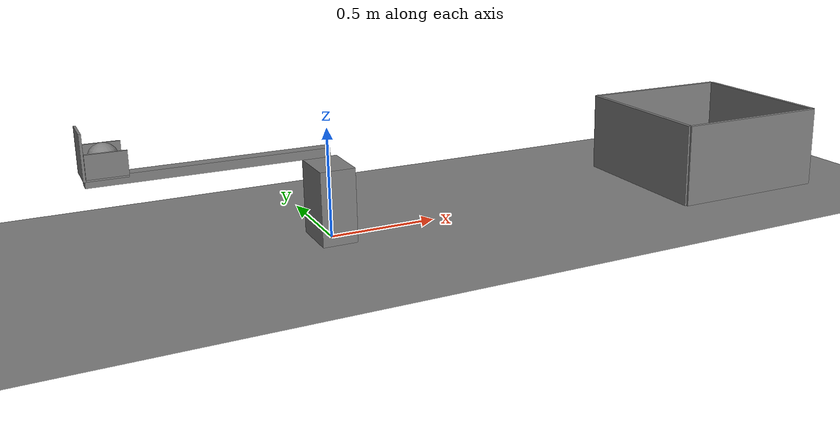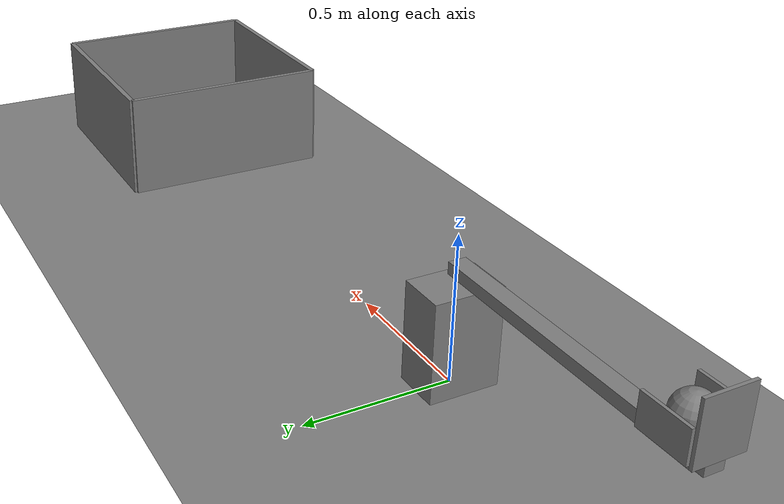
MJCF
<mujoco model="catapult_fixture">
  <compiler angle="radian"/>
  <option timestep="0.002"/>
  <worldbody>
    <geom name="floor" type="plane" size="8 8 0.1"/>
    <geom name="catapult_base" type="box" pos="0 0 0.170" size="0.08 0.12 0.170"/>
    <body name="catapult_arm" pos="0 0 0.4">
      <joint name="catapult_hinge" type="hinge" axis="0 1 0" limited="true" range="0 0.9599" stiffness="2.6" springref="2.618" damping="0.05" armature="0.01"/>
      <geom name="catapult_beam" type="box" pos="-0.500 0 0" size="0.500 0.03 0.02" mass="0.3"/>
      <geom name="catapult_cup_floor" type="box" pos="-0.920 0 0.025" size="0.08 0.08 0.005" mass="0.02"/>
      <geom name="catapult_cup_back" type="box" pos="-1.005 0 0.115" size="0.005 0.08 0.095" mass="0.01"/>
      <geom name="catapult_cup_left" type="box" pos="-0.920 0.085 0.08" size="0.08 0.005 0.05" mass="0.005"/>
      <geom name="catapult_cup_right" type="box" pos="-0.920 -0.085 0.08" size="0.08 0.005 0.05" mass="0.005"/>
    </body>
    <body name="ball" pos="-0.920 0 0.4895">
      <freejoint/>
      <geom name="ball" type="sphere" size="0.06" mass="0.15" condim="6" friction="0.8 0.01 0.004" solref="0.01 1"/>
    </body>
    <body name="bucket" pos="2.08 0 0">
      <geom name="bucket_base" type="box" pos="0 0 0.01" size="0.4 0.4 0.01"/>
      <geom name="bucket_near" type="box" pos="-0.4 0 0.2" size="0.01 0.4 0.2"/>
      <geom name="bucket_far" type="box" pos="0.4 0 0.2" size="0.01 0.4 0.2"/>
      <geom name="bucket_left" type="box" pos="0 0.4 0.2" size="0.4 0.01 0.2"/>
      <geom name="bucket_right" type="box" pos="0 -0.4 0.2" size="0.4 0.01 0.2"/>
    </body>
  </worldbody>
</mujoco>
